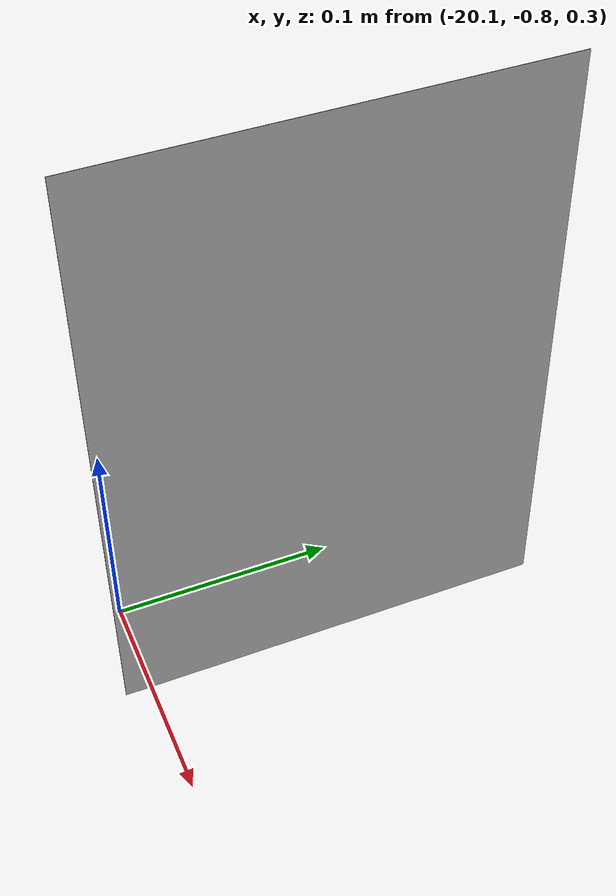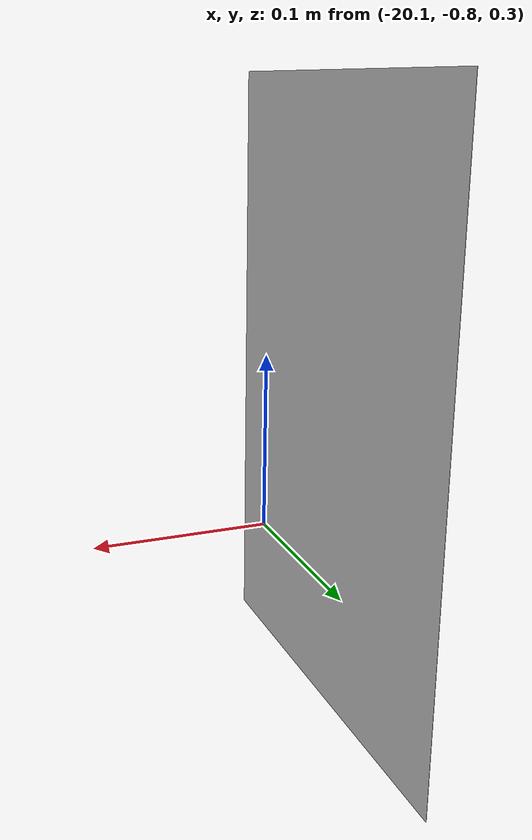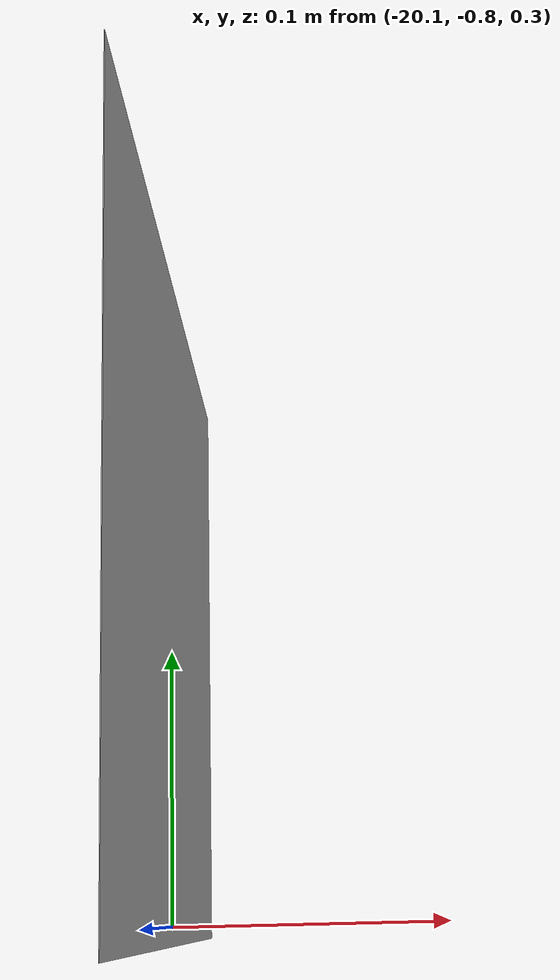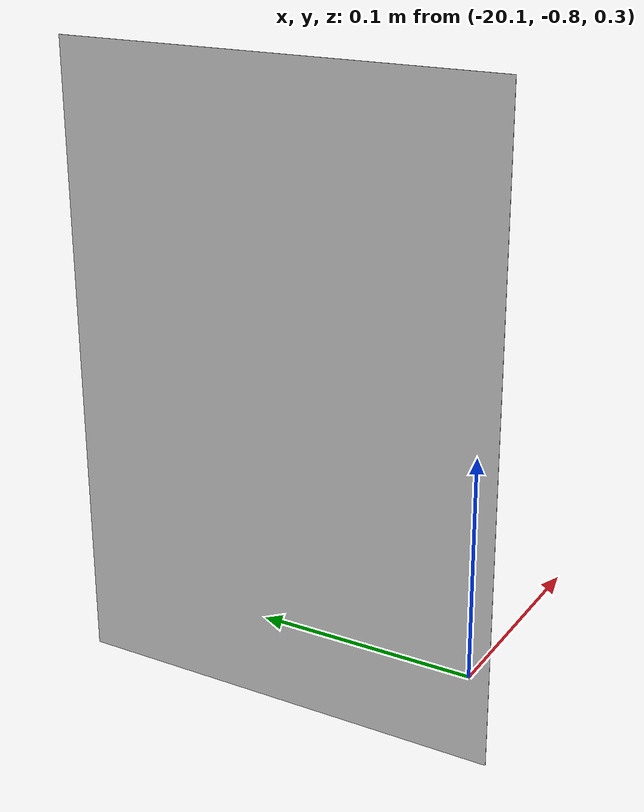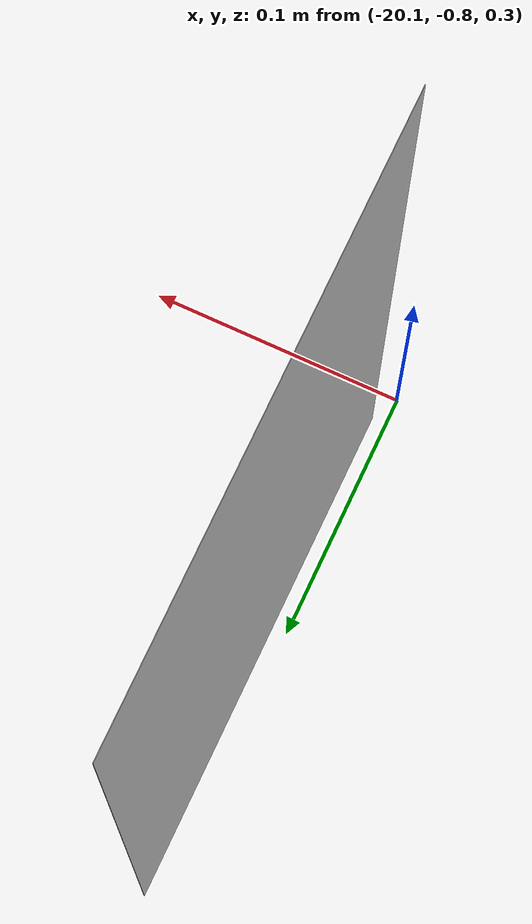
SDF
<?xml version="1.0"?>
<sdf version="1.4">
<model name="cluedo_character">
  <static>true</static>
    <link name="link">
      <collision name="collision">
        <geometry>
          <plane>
            <normal>0 0 1</normal>
            <size>0.21 0.297</size>
          </plane>
        </geometry>
        <surface>
          <friction>
            <ode>
              <mu>100</mu>
              <mu2>50</mu2>
            </ode>
          </friction>
        </surface>
      </collision>
      <visual name="visual">
      <pose>-20.09 -0.7 0.4 1.57 0 1.57</pose>
        <cast_shadows>false</cast_shadows>
        <geometry>
          <plane>
            <normal>0 0 1</normal>
            <size>0.21 0.297</size>
          </plane>
        </geometry>
        <material>
          <script>
            <uri>model://cluedo_character3/materials/scripts</uri>
            <uri>model://cluedo_character3/materials/textures</uri>
            <name>Cluedo_character/Image</name>
          </script>
        </material>
      </visual>
    </link>
  </model>
</sdf>
